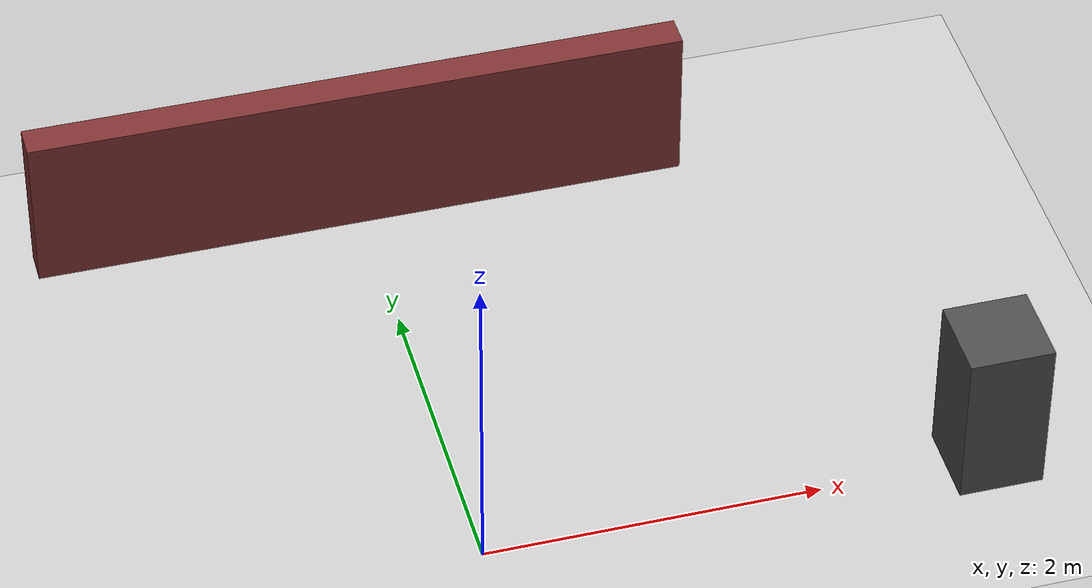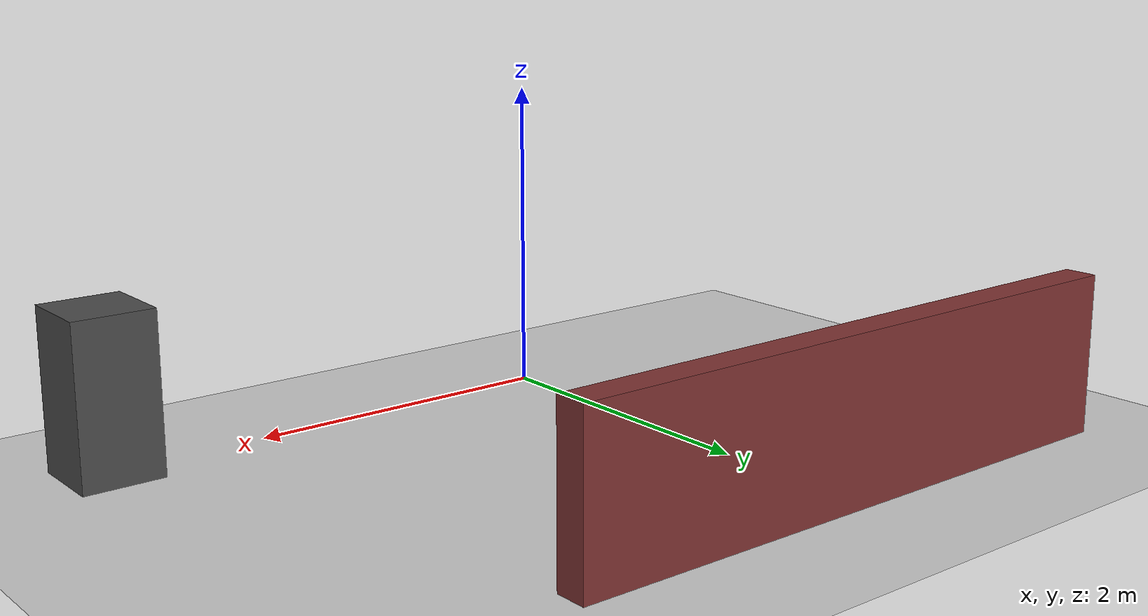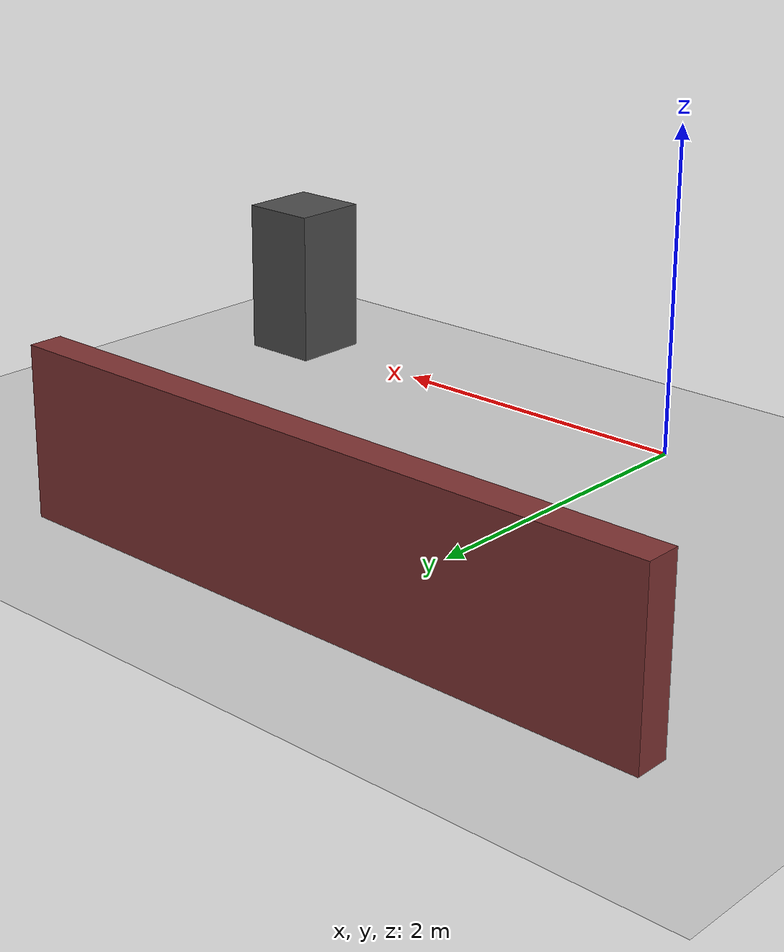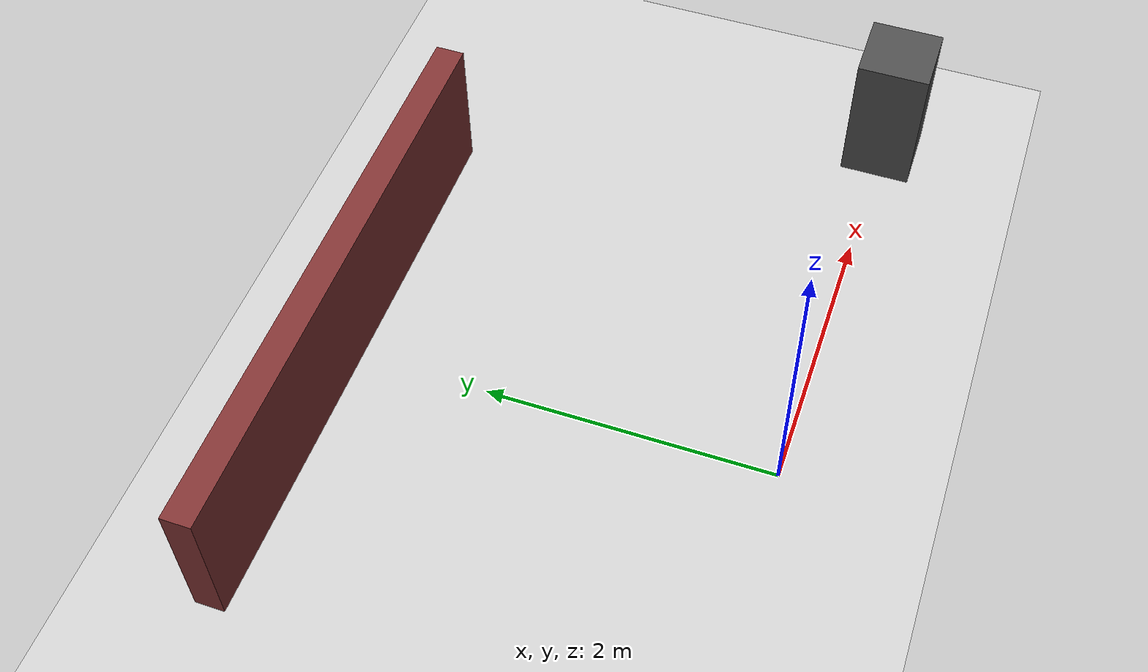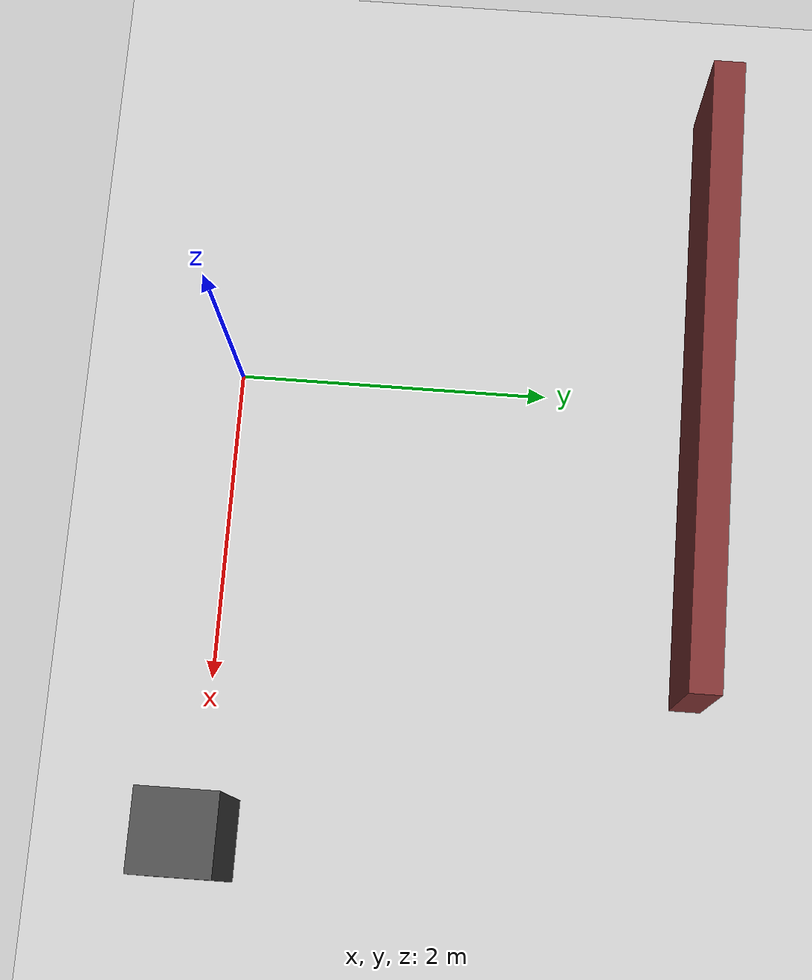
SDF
<?xml version="1.0" ?>
<sdf version="1.8">
  <world name="almacen">

    <plugin filename="gz-sim-physics-system" name="gz::sim::systems::Physics"></plugin>
    <plugin filename="gz-sim-user-commands-system" name="gz::sim::systems::UserCommands"></plugin>
    <plugin filename="gz-sim-scene-broadcaster-system" name="gz::sim::systems::SceneBroadcaster"></plugin>
    <plugin filename="gz-sim-sensors-system" name="gz::sim::systems::Sensors">
      <render_engine>ogre2</render_engine>
    </plugin>

    <physics name="1ms" type="ignored">
      <max_step_size>0.001</max_step_size>
      <real_time_factor>1.0</real_time_factor>
    </physics>

    <light type="directional" name="sun">
      <cast_shadows>true</cast_shadows>
      <pose>0 0 10 0 0 0</pose>
      <diffuse>0.8 0.8 0.8 1</diffuse>
      <specular>0.2 0.2 0.2 1</specular>
      <attenuation>
        <range>1000</range>
        <constant>0.9</constant>
        <linear>0.01</linear>
        <quadratic>0.001</quadratic>
      </attenuation>
      <direction>-0.5 0.1 -0.9</direction>
    </light>

    <model name="ground_plane">
      <static>true</static>
      <link name="link">
        <collision name="collision">
          <geometry><plane><normal>0 0 1</normal><size>100 100</size></plane></geometry>
        </collision>
        <visual name="visual">
          <geometry><plane><normal>0 0 1</normal><size>100 100</size></plane></geometry>
          <material>
            <ambient>0.8 0.8 0.8 1</ambient>
            <diffuse>0.8 0.8 0.8 1</diffuse>
            <specular>0.8 0.8 0.8 1</specular>
          </material>
        </visual>
      </link>
    </model>

    <model name="pilar_1">
      <pose>3 0 0.5 0 0 0</pose>
      <static>true</static>
      <link name="link">
        <collision name="collision">
          <geometry><box><size>0.5 0.5 1</size></box></geometry>
        </collision>
        <visual name="visual">
          <geometry><box><size>0.5 0.5 1</size></box></geometry>
          <material>
            <ambient>0.3 0.3 0.3 1</ambient>
            <diffuse>0.3 0.3 0.3 1</diffuse>
          </material>
        </visual>
      </link>
    </model>

    <model name="muro_1">
      <pose>0 3 0.5 0 0 0</pose>
      <static>true</static>
      <link name="link">
        <collision name="collision">
          <geometry><box><size>4 0.2 1</size></box></geometry>
        </collision>
        <visual name="visual">
          <geometry><box><size>4 0.2 1</size></box></geometry>
          <material>
            <ambient>0.5 0.2 0.2 1</ambient>
            <diffuse>0.5 0.2 0.2 1</diffuse>
          </material>
        </visual>
      </link>
    </model>

  </world>
</sdf>
